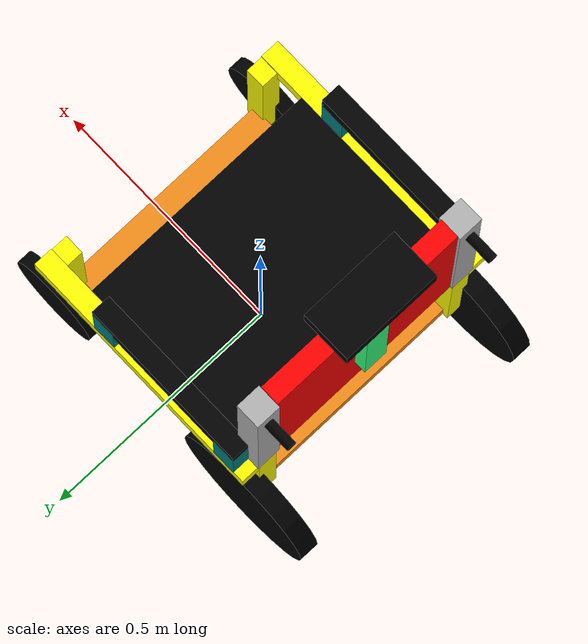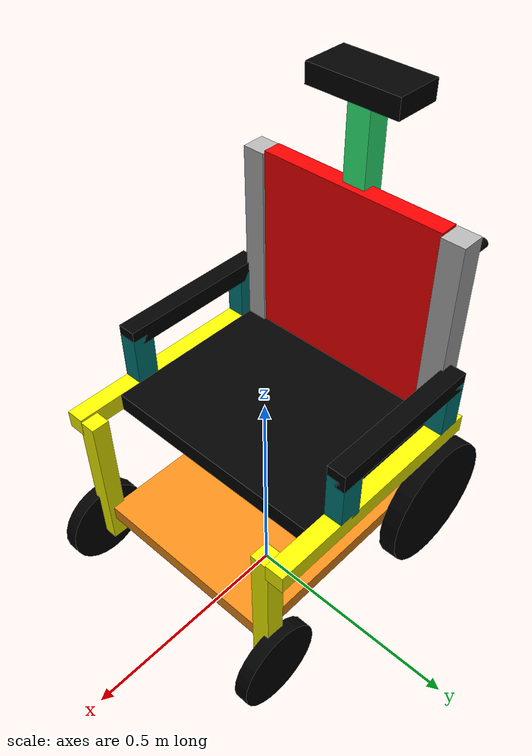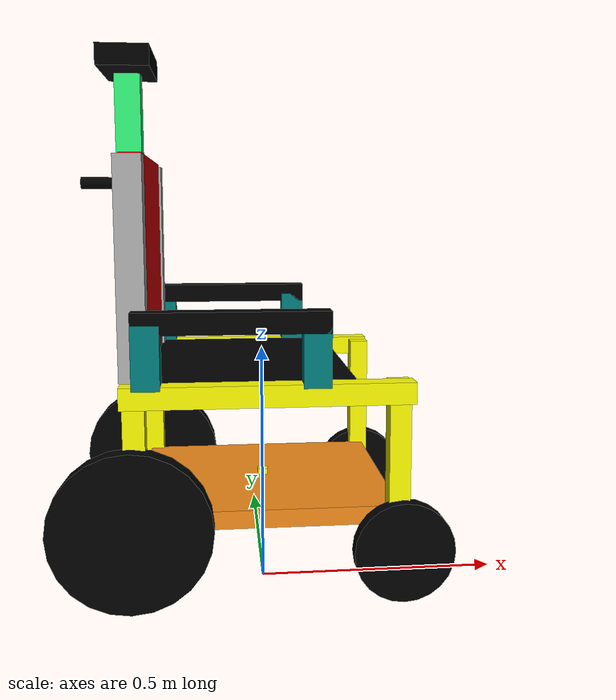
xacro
<?xml version="1.0"?>
<robot xmlns:xacro="http://www.ros.org/wiki/xacro"
name="Self-driving_Wheelchair">

    <xacro:include filename="$(find mywheelchair_description)/urdf/mybot.gazebo" />

    <link name="chassis">
        <visual name="">
            <origin xyz="0.0 0.0 0.0" rpy="0.0 0.0 0.0"/>
            <geometry>
                <box size="0.001 0.001 0.001"/>
            </geometry>
            <material name="">
                <color rgba="0.0 0.0 0.0 0.0"/>
                <texture filename=""/>
            </material>
        </visual>
    </link>

    <link name="imu_sensor_link">
        <collision>
            <origin xyz="0 0 0" rpy="0 0 0"/>
            <geometry>
                <box size="0.02 0.02 0.02"/>
            </geometry>
        </collision>
        <visual>
            <origin xyz="0 0 0" rpy="0 0 0"/>
            <geometry>
                <box size="0.02 0.02 0.02"/>
            </geometry>
            <material name="yellow">
                <color rgba="1 1 0 1" />
            </material>
        </visual>
        <inertial>
            <mass value="0.001" />
            <origin xyz="0 0 0" rpy="0 0 0"/>
            <inertia ixx="0.00000015" ixy="0" ixz="0" iyy="0.00000015" iyz="0" izz="0.00000015" />
        </inertial>
    </link>

    <joint name="imu_sensor_joint" type="fixed">
        <axis xyz="0 0 1" />
        <origin xyz="0.0 0.0 0.02" rpy="0.0 0.0 0.0"/>
        <parent link="base_uplayer_link"/>
        <child link="imu_sensor_link"/>
    </joint>

    <link name="base_uplayer_link">
        <visual name='chassis_visual'>
            <origin xyz="0 0 0" rpy=" 0 0 0"/>
            <geometry>
                <box size=".50 0.44 .035"/>
            </geometry>
        </visual>

        <inertial>
            <mass value="10.0"/>
            <origin xyz="0 0 0" rpy=" 0 0 0"/>
            <inertia
                ixx="0.5" ixy="0" ixz="0"
                iyy="1.0" iyz="0"
                izz="0.1"
            />
        </inertial>

        <collision name='collision'>
            <geometry>
                <box size=".50 0.44 .035"/>
            </geometry>
        </collision>

        <collision name='caster_collision'>
            <origin xyz="-0.2 0 -0.05" rpy=" 0 0 0"/>
            <geometry>
                <sphere radius="0.05"/>
            </geometry>
            <surface>
                <friction>
                <ode>
                    <mu>0</mu>
                    <mu2>0</mu2>
                    <slip1>1.0</slip1>
                    <slip2>1.0</slip2>
                </ode>
                </friction>
            </surface>
        </collision>

        <visual name='caster_visual'>
            <origin xyz="0.0 0 -0.05" rpy=" 0 0 0"/>
            <geometry>
            <sphere radius="0.05"/>
            </geometry>
        </visual>
    </link>

    <joint name="base_joint" type="fixed">
        <origin xyz="0.0 0.0 0.21" rpy="0.0 0.0 0.0"/>   <!-- here can control height from z -->
        <parent link="chassis"/>
        <child link="base_uplayer_link"/>
        <!-- here if link can move here choose axis who move around -->
        <axis xyz="0.0 0.0 0.0"/>
        <limit lower="0.0" upper="0.0" effort="0.0" velocity="0.0"/>
        <!-- currently we don't need limity  -->
    </joint>

    <!-- Back right wheel Joint -->
    <joint name="wheel1_joint" type="continuous">
        <origin xyz="-0.25 -0.26 0.0" rpy="0.0 0.0 0.0" />
        <parent link="base_uplayer_link" />
        <child link="wheel1_link" />
        <axis xyz="0.0 1.0 0.0" />
        <limit lower="0.0" upper="0.0" effort="0.0" velocity="0.0" />
    </joint>
    <!-- Back right wheel Link -->
    <link name="wheel1_link">
        <inertial>
            <origin xyz="0.0 0.0 0.0" rpy="0.0 0.0 0.0" />
            <mass value="0.5" />
            <inertia ixx="0.1" ixy="0.0" ixz="0.0" iyy="0.1" iyz="0.0" izz="0.1" />
        </inertial>
        <visual name="wheel1_visual">
            <origin xyz="0.0 0.0 0.0" rpy="1.570795 0.0 0.0" />
            <geometry>
            <cylinder length="0.04" radius="0.15" />
            </geometry>
            <material name="black">
                <color rgba="0 0 0 1" />
            </material>
        </visual>
        <collision name="wheel1_collision">
            <origin xyz="0.0 0.0 0.0" rpy="1.570795 0.0 0.0" />
            <geometry>
            <cylinder length="0.04" radius="0.15" />
            </geometry>
        </collision>
    </link>

    <!-- Back left wheel Joint -->
    <joint name="wheel2_joint" type="continuous">
        <origin xyz="-0.25 0.26 0" rpy="0.0 0.0 0.0" />
        <parent link="base_uplayer_link" />
        <child link="wheel2_link" />
        <axis xyz="0.0 1.0 0.0" />
        <limit lower="0.0" upper="0.0" effort="0.0" velocity="0.0" />
    </joint>
    <!-- Back right wheel Link -->
    <link name="wheel2_link">
        <inertial>
            <origin xyz="0.0 0.0 0.0" rpy="0.0 0.0 0.0" />
            <mass value="0.5" />
            <inertia ixx="0.1" ixy="0.0" ixz="0.0" iyy="0.1" iyz="0.0" izz="0.1" />
        </inertial>
        <visual name="wheel2_visual">
            <origin xyz="0.0 0.0 0.0" rpy="1.570795 0.0 0.0" />
            <geometry>
                <cylinder length="0.04" radius="0.15" />
            </geometry>
            <material name="black">
                <color rgba="0 0 0 1" />
            </material>
        </visual>
        <collision name="wheel2_collision">
            <origin xyz="0.0 0.0 0.0" rpy="1.570795 0.0 0.0" />
            <geometry>
                <cylinder length="0.04" radius="0.15" />
            </geometry>
        </collision>
    </link>

    <!-- front right wheel Link -->
    <link name="wheel3_link">
        <inertial>
            <origin xyz="0.0 0.0 0.0" rpy="0.0 0.0 0.0" />
            <mass value="0.5" />
            <inertia ixx="0.1" ixy="0.0" ixz="0.0" iyy="0.1" iyz="0.0" izz="0.1" />
        </inertial>
        <visual name="wheel3_visual">
            <origin xyz="0.0 0.0 0.0" rpy="1.570795 0.0 0.0" />
            <geometry>
                <cylinder length="0.03" radius="0.095" />
            </geometry>
            <material name="black">
                <color rgba="0 0 0 1" />
                <texture filename="" />
            </material>
        </visual>
        <collision name="wheel3_collision">
            <origin xyz="0.0 0.0 0.0" rpy="1.570795 0.0 0.0" />
            <geometry>
                <cylinder length="0.03" radius="0.095" />
            </geometry>
        </collision>
    </link>

    <!-- front right wheel Joint -->
    <joint name="wheel3_joint" type="continuous">
        <origin xyz="0.25 -0.26 -0.055" rpy="0.0 0.0 0.0" />
        <parent link="base_uplayer_link" />
        <child link="wheel3_link" />
        <axis xyz="0.0 1.0 0.0" />
        <limit lower="0.0" upper="0.0" effort="0.0" velocity="0.0" />
    </joint>

    <!-- front left wheel Joint -->
    <joint name="wheel4_joint" type="continuous">
        <origin xyz="0.25 0.26 -0.055" rpy="0.0 0.0 0.0" />
        <parent link="base_uplayer_link" />
        <child link="wheel4_link" />
        <axis xyz="0.0 1.0 0.0" />
        <limit lower="0.0" upper="0.0" effort="0.0" velocity="0.0" />
    </joint>
    <!-- front left wheel Link -->
    <link name="wheel4_link">
        <inertial>
            <origin xyz="0.0 0.0 0.0" rpy="0.0 0.0 0.0" />
            <mass value="0.5" />
            <inertia ixx="0.1" ixy="0.0" ixz="0.0" iyy="0.1" iyz="0.0" izz="0.1" />
        </inertial>
        <visual name="wheel4_visual">
            <origin xyz="0.0 0.0 0.0" rpy="1.570795 0.0 0.0" />
            <geometry>
                <cylinder length="0.03" radius="0.095" />
            </geometry>
            <material name="black">
                <color rgba="0 0 0 1" />
                <texture filename="" />
            </material>
        </visual>
        <collision name="wheel4_collision">
            <origin xyz="0.0 0.0 0.0" rpy="1.570795 0.0 0.0" />
            <geometry>
                <cylinder length="0.03" radius="0.095" />
            </geometry>
        </collision>
    </link>

    <!-- All column back links and joints -->
    <xacro:macro name="back_column" params="name x y">

        <link name="column_back_${name}_link">
            <inertial>
                <origin xyz="0.0 0.0 0.0" rpy="0.0 0.0 0.0"/>
                <mass value="0.02"/>
                <inertia ixx="0.0" ixy="0.0" ixz="0.0" iyy="0.0" iyz="0.0" izz="0.0"/>
            </inertial>
            <visual name="">
                <origin xyz="0.0 0.0 0.0" rpy="0.0 0.0 0.0"/>
                <geometry>
                    <box size="0.04 0.04 0.30"/>
                </geometry>
                <material name="yellow">
                    <color rgba="1 1 0 1" />
                    <texture filename="" />
                </material>
            </visual>
            <collision>
                <origin xyz="0.0 0.0 0.0" rpy="0.0 0.0 0.0"/>
                <geometry>
                    <box size="0.04 0.04 0.30"/>
                </geometry>
            </collision>
        </link>

        <joint name="column_back_${name}_joint" type="fixed">
        <!-- here make  x = 0.28 instead of x=0.285 to make column not touch wheel -->
            <origin xyz="${x} ${y} 0.135" rpy="0.0 0.0 0.0"/>
            <parent link="base_uplayer_link"/>
            <child link="column_back_${name}_link"/>
            <axis xyz="0.0 0.0 0.0"/>
        </joint>

    </xacro:macro>

    <!-- Back Left column create  using xacro macros-->
    <xacro:back_column name="right" x="-0.242" y="0.23" />
    <!-- Back Right column create  using xacro macros-->
    <xacro:back_column name="left"  x="-0.242" y="-0.23" />

    <!-- All Front column links and joints -->
    <xacro:macro name="front_column" params="name x y">

        <link name="column_front_${name}_link">
            <inertial>
                <origin xyz="0.0 0.0 0.0" rpy="0.0 0.0 0.0"/>
                <mass value="0.02"/>
                <inertia ixx="0.0" ixy="0.0" ixz="0.0" iyy="0.0" iyz="0.0" izz="0.0"/>
            </inertial>
            <visual name="">
                <origin xyz="0.0 0.0 0.0" rpy="0.0 0.0 0.0"/>
                <geometry>
                    <box size="0.04 0.04 0.34"/>
                </geometry>
                <material name="yellow">
                    <color rgba="1 1 0 1" />
                    <texture filename="" />
                </material>
            </visual>
            <collision>
                <origin xyz="0.0 0.0 0.0" rpy="0.0 0.0 0.0"/>
                <geometry>
                    <box size="0.04 0.04 0.34"/>
                </geometry>
            </collision>
        </link>

        <joint name="column_front_${name}_joint" type="fixed">
        <!-- here make  x = 0.28 instead of x=0.285 to make column not touch wheel -->
            <origin xyz="${x} ${y} 0.095" rpy="0.0 0.0 0.0"/>
            <parent link="base_uplayer_link"/>
            <child link="column_front_${name}_link"/>
            <axis xyz="0.0 0.0 0.0"/>
        </joint>

    </xacro:macro>

    <!-- Front Left column create  using xacro macros-->
    <xacro:front_column name="left" x="0.242" y="-0.235" />

    <!-- Front Right column create  using xacro macros-->
    <xacro:front_column name="right"  x="0.242" y="0.235" />

 <!-- All Parallel column link and joint -->

    <xacro:macro name="parallelColumn" params="name y">

        <link name="conect_2_${name}_link">
            <inertial>
                <origin xyz="0.0 0.0 0.0" rpy="0.0 0.0 0.0"/>
                <mass value="0.02"/>
                <inertia ixx="0.0" ixy="0.0" ixz="0.0" iyy="0.0" iyz="0.0" izz="0.0"/>
            </inertial>
            <visual name="">
                <origin xyz="0.0 0.0 0.0" rpy="0.0 0.0 0.0"/>
                <geometry>
                    <box size="0.525 0.04 0.04"/>
                </geometry>
                <material name="">
                    <color rgba="1.0 1.0 0.0 1.0"/>
                    <texture filename=""/>
                </material>
            </visual>
            <collision>
                <origin xyz="0.0 0.0 0.0" rpy="0.0 0.0 0.0"/>
                <geometry>
                    <box size="0.525 0.04 0.04"/>
                </geometry>
            </collision>
        </link>
        <joint name="conect_2_${name}_joint" type="fixed">
            <origin xyz=" 0.0 ${y} 0.25" rpy="0.0 0.0 0.0"/>
            <parent link="base_uplayer_link"/>
            <child link="conect_2_${name}_link"/>
            <axis xyz="0.0 0.0 0.0"/>
        </joint>
    </xacro:macro>
    <!-- left parallel column create using macros -->
    <xacro:parallelColumn name="left_columns" y="-0.27" />
    <!-- right parallel column create using macros -->
    <xacro:parallelColumn name="right_columns" y="0.27" />
    <!-- left parallel column create using macros -->

    <!-- create seat link and joint  -->
    <link name="seat_link">
        <inertial>
            <origin xyz="0.0 0.0 0.0" rpy="0.0 0.0 0.0"/>
            <mass value="1.0"/>
            <inertia ixx="0.0" ixy="0.0" ixz="0.0" iyy="0.0" iyz="0.0" izz="0.0"/>
        </inertial>
        <visual name="">
            <origin xyz="0.0 0.0 0.0" rpy="0.0 0.0 0.0"/>
            <geometry>
                <box size="0.4 0.5 0.04"/>
            </geometry>
            <material name="">
                <color rgba="0.0 0.0 0.0 1.0"/>
                <texture filename=""/>
            </material>
        </visual>
        <collision>
            <origin xyz="0.0 0.0 0.0" rpy="0.0 0.0 0.0"/>
            <geometry>
                <box size="0.4 0.5 0.04"/>
            </geometry>
        </collision>
    </link>
    <joint name="seat_joint" type="fixed">
        <origin xyz="-0.04 0.0 0.25" rpy="0.0 0.0 0.0"/>
        <parent link="base_uplayer_link"/>
        <child link="seat_link"/>
        <axis xyz="0.0 0.0 0.0"/>
    </joint>

    <!-- All vertical column for stand  link and joint -->
    <xacro:macro name="carriage_stand" params="name x y">

        <link name="carriage_stand_${name}_link">
            <inertial>
                <origin xyz="0.0 0.0 0.0" rpy="0.0 0.0 0.0"/>
                <mass value="0.02"/>
                <inertia ixx="0.0" ixy="0.0" ixz="0.0" iyy="0.0" iyz="0.0" izz="0.0"/>
            </inertial>
            <visual name="">
                <origin xyz="0.0 0.0 0.0" rpy="0.0 0.0 0.0"/>
                <geometry>
                    <box size="0.05 0.04 0.115"/>
                </geometry>
                <material name="">
                    <color rgba="0.0 0.5 0.5 1.0"/>
                    <texture filename=""/>
                </material>
            </visual>
            <collision>
                <origin xyz="0.0 0.0 0.0" rpy="0.0 0.0 0.0"/>
                <geometry>
                    <box size="0.05 0.04 0.115"/>
                </geometry>
            </collision>
        </link>
        <joint name="carriage_stand_${name}_joint" type="fixed">
            <origin xyz="${x} ${y} 0.07" rpy="0.0 0.0 0.0"/>
            <parent link="seat_link"/>
            <child link="carriage_stand_${name}_link"/>
            <axis xyz="0.0 0.0 0.0"/>
        </joint>

    </xacro:macro>
    <!-- create left carriage_stand using macro -->
    <xacro:carriage_stand name="left_top" x="-0.175" y="-0.27"/>
    <!-- create right carriage_stand using macro -->
    <xacro:carriage_stand name="right_top" x= "-0.175" y="0.27"/>

    <!-- create left carriage_stand using macro -->
    <xacro:carriage_stand name="left_bottom" x="0.125" y="-0.27"/>
    <!-- create right carriage_stand using macro -->
    <xacro:carriage_stand name="right_bottom" x="0.125" y="0.27"/>

    <!-- All Parallel column for stand  link and joint -->
    <xacro:macro name="parallel_stand" params="name y">

        <link name="parallel_stand_${name}_link">
            <inertial>
                <origin xyz="0.0 0.0 0.0" rpy="0.0 0.0 0.0"/>
                <mass value="0.02"/>
                <inertia ixx="0.0" ixy="0.0" ixz="0.0" iyy="0.0" iyz="0.0" izz="0.0"/>
            </inertial>
            <visual name="">
                <origin xyz="0.0 0.0 0.0" rpy="0.0 0.0 0.0"/>
                <geometry>
                    <box size="0.35 0.04 0.04"/>
                </geometry>
                <material name="">
                    <color rgba="0.0 0.0 0.0 1.0"/>
                    <texture filename=""/>
                </material>
            </visual>
            <collision>
                <origin xyz="0.0 0.0 0.0" rpy="0.0 0.0 0.0"/>
                <geometry>
                    <box size="0.35 0.04 0.04"/>
                </geometry>
            </collision>
        </link>
        <joint name="parallel_stand_${name}_joint" type="fixed">
            <origin xyz="-0.025 ${y} 0.13" rpy="0.0 0.0 0.0"/>
            <parent link="seat_link"/>
            <child link="parallel_stand_${name}_link"/>
            <axis xyz="0.0 0.0 0.0"/>
        </joint>

    </xacro:macro>
    <!-- create left parallel stand (actaully stand ) using macros -->
    <xacro:parallel_stand name="left" y="-0.27"/>
    <!-- create right parallel stand (actaully stand ) using macros -->
    <xacro:parallel_stand name="right" y="0.27"/>

 <!-- All column for Back seat link and joint -->
    <xacro:macro name="column_back" params="name y">

        <link name="column_back_seat_${name}_link">
            <inertial>
                <origin xyz="0.0 0.0 0.0" rpy="0.0 0.0 0.0"/>
                <mass value="0.02"/>
                <inertia ixx="0.0" ixy="0.0" ixz="0.0" iyy="0.0" iyz="0.0" izz="0.0"/>
            </inertial>
            <visual name="">
                <origin xyz="0.0 0.0 0.0" rpy="0.0 0.0 0.0"/>
                <geometry>
                    <box size="0.05 0.05 0.4"/>
                </geometry>
                <material name="">
                    <color rgba="0.7 0.7 0.7 1.0"/>
                    <texture filename=""/>
                </material>
            </visual>
            <collision>
                <origin xyz="0.0 0.0 0.0" rpy="0.0 0.0 0.0"/>
                <geometry>
                    <box size="0.05 0.05 0.4"/>
                </geometry>
            </collision>
        </link>
        <joint name="column_back_seat_${name}_joint" type="fixed">
            <origin xyz="-0.2 ${y} 0.22" rpy="0.0 0.0 0.0"/>
            <parent link="seat_link"/>
            <child link="column_back_seat_${name}_link"/>
            <axis xyz="0.0 0.0 0.0"/>
        </joint>
    </xacro:macro>
    <!-- create left column that will used to make back seat using macros -->
    <xacro:column_back name="left" y="-0.23 "/>
    <!-- create right column that will used to make back seat using macros -->
    <xacro:column_back name="right" y="0.23 "/>

<!-- create back link and jont -->
    <link name="back_link">
        <inertial>
            <origin xyz="0.0 0.0 0.0" rpy="0.0 0.0 0.0"/>
            <mass value="1.0"/>
            <inertia ixx="0.0" ixy="0.0" ixz="0.0" iyy="0.0" iyz="0.0" izz="0.0"/>
        </inertial>
        <visual name="">
            <origin xyz="0.0 0.0 0.0" rpy="0.0 0.0 0.0"/>
            <geometry>
                <box size="0.04 0.41 0.41"/>
            </geometry>
            <material name="">
                <color rgba="1.0 0.0 0.0 1.0"/>
                <texture filename=""/>
            </material>
        </visual>
        <collision>
            <origin xyz="0.0 0.0 0.0" rpy="0.0 0.0 0.0"/>
            <geometry>
                <box size="0.02 0.41 0.41"/>
            </geometry>
        </collision>
    </link>
    <joint name="back_joint" type="fixed">
        <origin xyz="-0.2 0.0 0.22" rpy="0.0 0.0 0.0"/>
        <parent link="seat_link"/>
        <child link="back_link"/>
        <axis xyz="0.0 0.0 0.0"/>
        <limit lower="0.0" upper="0.0" effort="0.0" velocity="0.0"/>
    </joint>

    <!-- All handle to move chair link and joint -->
    <xacro:macro name="handle_chair" params="name parent_link ">

        <link name="handle_${name}_link">
            <inertial>
                <origin xyz="0.0 0.0 0.0" rpy="0.0 0.0 0.0"/>
                <mass value="0.02"/>
                <inertia ixx="0.0" ixy="0.0" ixz="0.0" iyy="0.0" iyz="0.0" izz="0.0"/>
            </inertial>
            <visual name="">
                <origin xyz="0.0 0.0 0.0" rpy="0.0 0.0 0.0"/>
                <geometry>
                    <cylinder radius="0.01" length="0.08"/>
                </geometry>
                <material name="">
                    <color rgba="0.0 0.0 0.0 1.0"/>
                    <texture filename=""/>
                </material>
            </visual>
            <collision>
                <origin xyz="0.0 0.0 0.0" rpy="0.0 0.0 0.0"/>
                <geometry>
                    <cylinder radius="0.01" length="0.08"/>
                </geometry>
            </collision>
        </link>
        <joint name="handle_${name}_joint" type="fixed">
            <origin xyz="-0.04 0.0 0.15" rpy="0.0 1.57 0.0"/>
            <parent link="${parent_link}"/>
            <child link="handle_${name}_link"/>
            <axis xyz="0.0 0.0 0.0"/>
        </joint>

    </xacro:macro>

    <xacro:handle_chair name="left" parent_link="column_back_seat_left_link" />
    <xacro:handle_chair name="right" parent_link="column_back_seat_right_link" />

 <!-- create stand for camera link and joint -->
    <link name="camera_stand_link">
        <inertial>
            <origin xyz="0.0 0.0 0.0" rpy="0.0 0.0 0.0"/>
            <mass value="1.0"/>
            <inertia ixx="0.0" ixy="0.0" ixz="0.0" iyy="0.0" iyz="0.0" izz="0.0"/>
        </inertial>
        <visual name="">
            <origin xyz="0.0 0.0 0.0" rpy="0.0 0.0 0.0"/>
            <geometry>
                <box size="0.05 0.05 0.435 "/>
            </geometry>
            <material name="">
                <color rgba="0.2 1.0 0.5 1.0"/>
                <texture filename=""/>
            </material>
        </visual>
        <collision>
            <origin xyz="0.0 0.0 0.0" rpy="0.0 0.0 0.0"/>
            <geometry>
                <box size="0.05 0.04 0.435 "/>
            </geometry>
        </collision>
    </link>

    <joint name="camera_stand_joint" type="fixed">
        <origin xyz="-0.22 0.0 0.37" rpy="0.0 0.0 0.0"/>
        <parent link="seat_link"/>
        <child link="camera_stand_link"/>
        <axis xyz="0.0 0.0 0.0"/>
    </joint>

 <!-- Camera Reference -->

<!-- Define the camera link -->
<link name="camera_link">
    <inertial>
        <origin xyz="0.0 0.0 0.0" rpy="0.0 0.0 0.0"/>
        <mass value="1.0"/>
        <inertia ixx="0.0" ixy="0.0" ixz="0.0" iyy="0.0" iyz="0.0" izz="0.0"/>
    </inertial>
    <visual name="camera_visual">
        <origin xyz="0.0 0.00 0.03" rpy="0 0 0.0"/>
        <geometry>
            <box size="0.1 0.2 0.04"/>
        </geometry>
        <material name="camera_material">
            <color rgba="0.0 0.0 0.0 1.0"/>
            <texture filename=""/>
        </material>
    </visual>
    <collision>
        <origin xyz="0.0 0.00 0.03" rpy="0 0 0.0"/>
        <geometry>
            <box size="0.1 0.2 0.04"/>
        </geometry>
    </collision>
</link>

<!-- Define the joint connecting camera link to its parent -->
<joint name="camera_joint" type="fixed">
    <parent link="camera_stand_link"/>
    <!-- Replace 'camera_stand_link' with the correct parent link name -->
    <child link="camera_link"/>
    <origin xyz="0.0 0.0 0.21" rpy="0 0.0 0.0"/>
    <axis xyz="0.0 0.0 0.0"/>
     <!-- Check if you need a specific axis here -->
    <!-- Set appropriate limits -->
</joint>

<!--  Kinect Optical Link and joints   /-->
<joint name="kinect_optical_joint" type="fixed">

    <!-- To invert the coordinates from image convention (Z is forward) to normal xyz /-->
    <origin xyz="0 0 0" rpy="-1.5707 0 -1.5707"/>
    <parent link="camera_link"/>
    <child link="kinect_optical"/>
</joint>

<!--Virtual link to project the images to, and then flip it to us as its joint is flipped  /-->
<link name="kinect_optical">
</link>

<!-- Lidar -->
    <!-- Check if you need a specific axis here -->
    <!-- Set appropriate limits -->

<!-- ++++++++++++++++++  Kinect  +++++++++++++++++++++++++++++ /-->
<!--kinect joint /-->

<!--Kinect  Link /-->

</robot>
